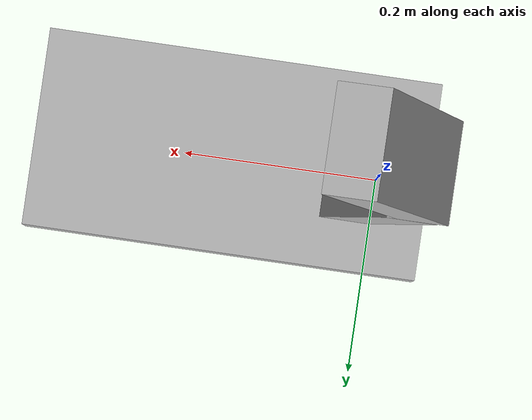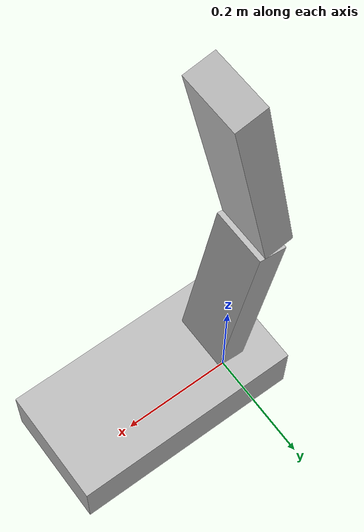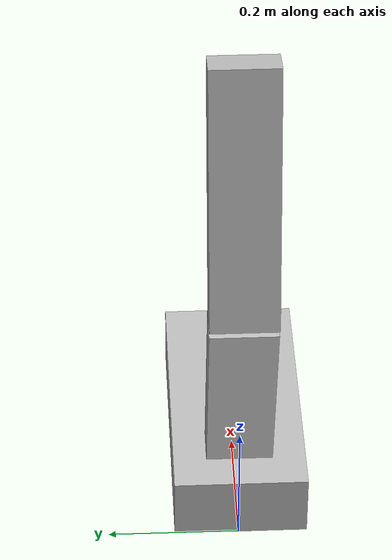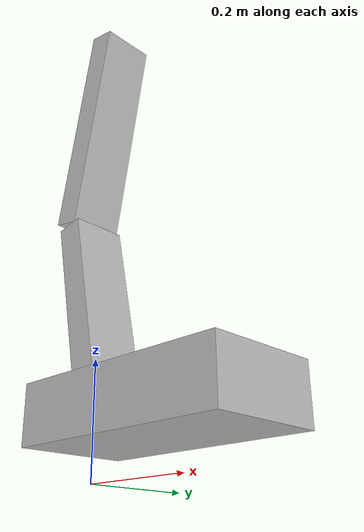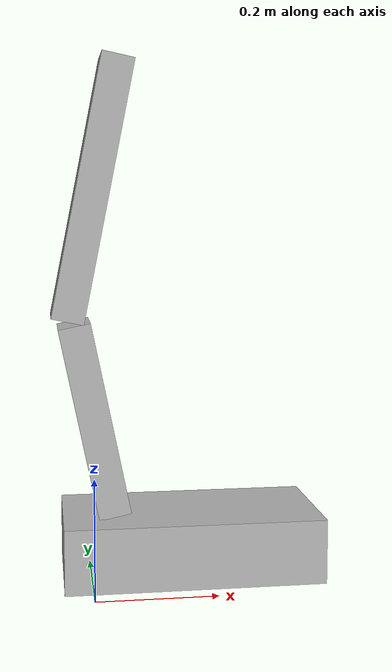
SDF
<?xml version='1.0'?>
<sdf version='1.4'>
  <model name='leg'>
    <link name='upper_leg'>
      <pose>0 0 .65 0 .2 0</pose>
      <inertial>
        <pose>0 0 .5 0 .2 0</pose>
        <inertia>
          <ixx>.1</ixx>
          <ixy>0</ixy>
          <ixz>1</ixz>
          <iyy>.1</iyy>
          <iyz>0</iyz>
          <izz>.1</izz>
        </inertia>
        <mass>1.0</mass>
      </inertial>
      <collision name='collision'>
        <geometry>
          <box>
            <size>.05 .1 .4</size>
          </box>
        </geometry>
      </collision>
      <visual name='visual'>
        <geometry>
          <box>
            <size>.05 .1 .4</size>
          </box>
        </geometry>
        <material>
          <script>Gazebo/Purple</script>
        </material>
      </visual>
    </link>

    <link name='lower_leg'>
      <pose>0 0 .3 0 -0.2 0</pose>
      <inertial>
        <pose>0 0 .2 0 -0.2 0</pose>
        <inertia>
          <ixx>.1</ixx>
          <ixy>0</ixy>
          <ixz>1</ixz>
          <iyy>.1</iyy>
          <iyz>0</iyz>
          <izz>.1</izz>
        </inertia>
        <mass>1.0</mass>
      </inertial>
      <collision name='collision'>
        <geometry>
          <box>
            <size>.05 .1 .3</size>
          </box>
        </geometry>
      </collision>
      <visual name='visual'>
        <geometry>
          <box>
            <size>.05 .1 .3</size>
          </box>
        </geometry>
        <material>
          <script>Gazebo/Blue</script>
        </material>
      </visual>
    </link>

    <link name='foot'>
      <pose>.15 0 .1 0 0 0</pose>
      <inertial>
        <pose>.3 0 .1 0 0 0</pose>
        <inertia>
          <ixx>.03</ixx>
          <ixy>.05</ixy>
          <ixz>1</ixz>
          <iyy>.01</iyy>
          <iyz>0</iyz>
          <izz>.01</izz>
        </inertia>
        <mass>20.0</mass>
      </inertial>
      <collision name='collision'>
        <geometry>
          <box>
            <size>.4 .2 .1</size>
          </box>
        </geometry>
      </collision>
      <visual name='visual'>
        <geometry>
          <box>
            <size>.4 .2 .1</size>
          </box>
        </geometry>
        <material>
          <script>Gazebo/Yellow</script>
        </material>
      </visual>
    </link>

    <static>false</static>

    <joint name='upper_leg_lower_leg' type='revolute'>
      <pose>0 0 .16 0 0 0</pose>
      <parent>upper_leg</parent>
      <child>lower_leg</child>
      <axis>
        <limit>
          <lower>0.1</lower>
          <upper>0.3</upper>
        </limit>
        <xyz>0 1 0</xyz>
      </axis>
    </joint>
    <joint name='lower_leg_foot' type='revolute'>
      <pose>-0.1 0 .05 0 0 0</pose>
      <parent>lower_leg</parent>
      <child>foot</child>
      <axis>
        <limit>
          <lower>0.1</lower>
          <upper>0.3</upper>
        </limit>
        <xyz>0 1 0</xyz>
      </axis>
    </joint>
  </model>
</sdf>
